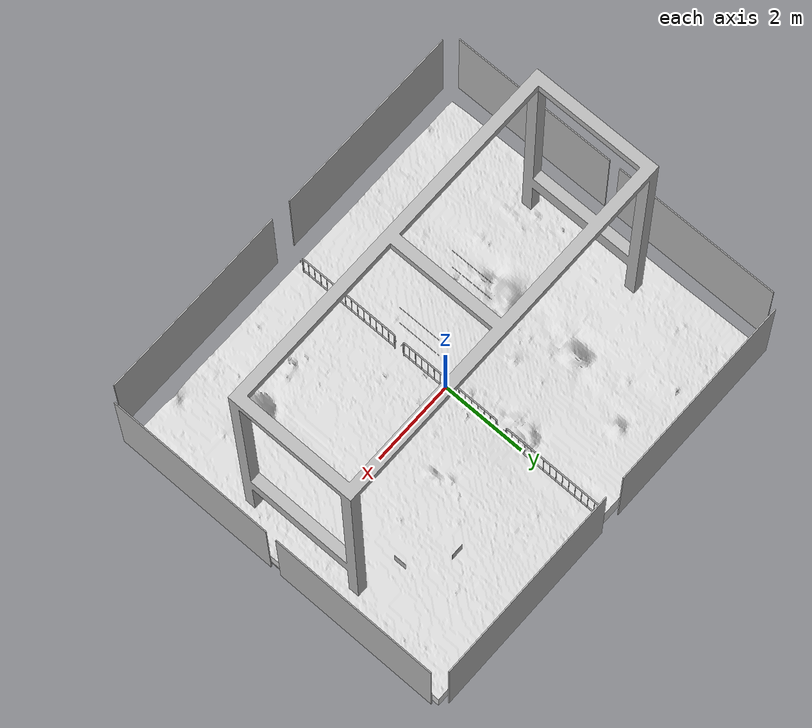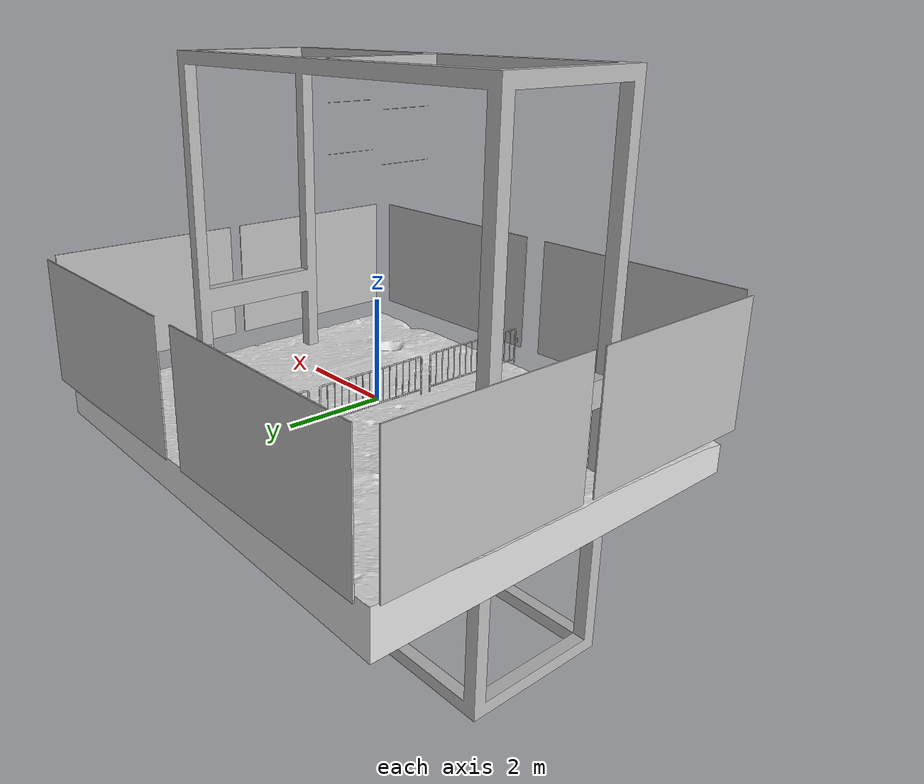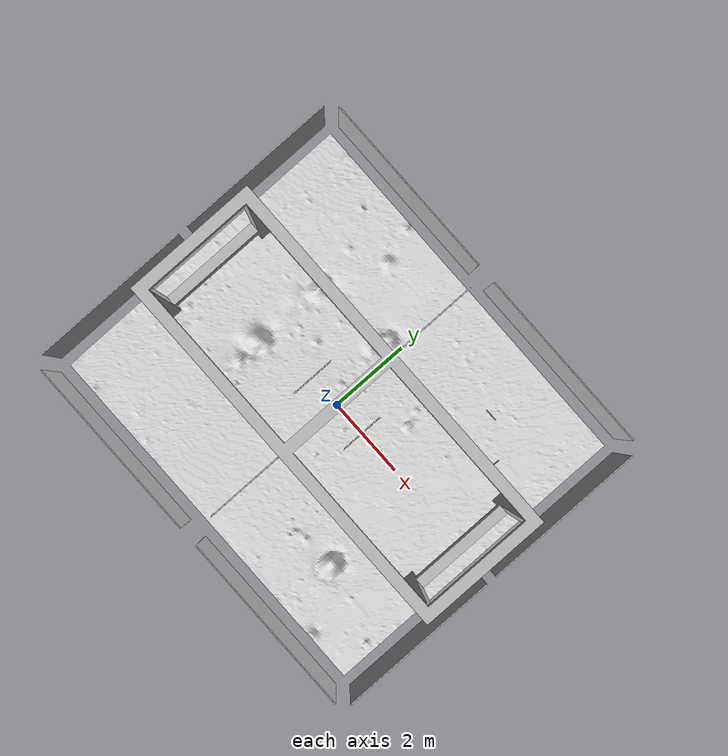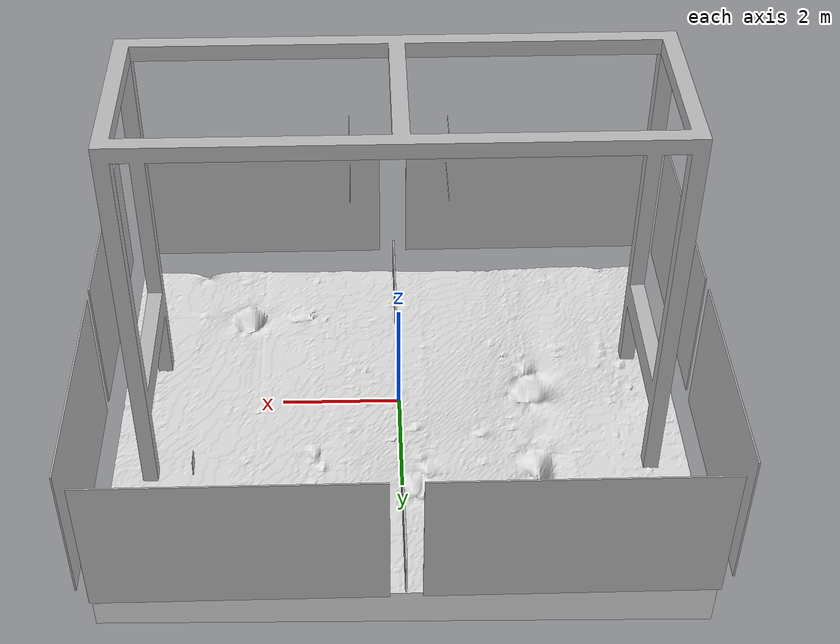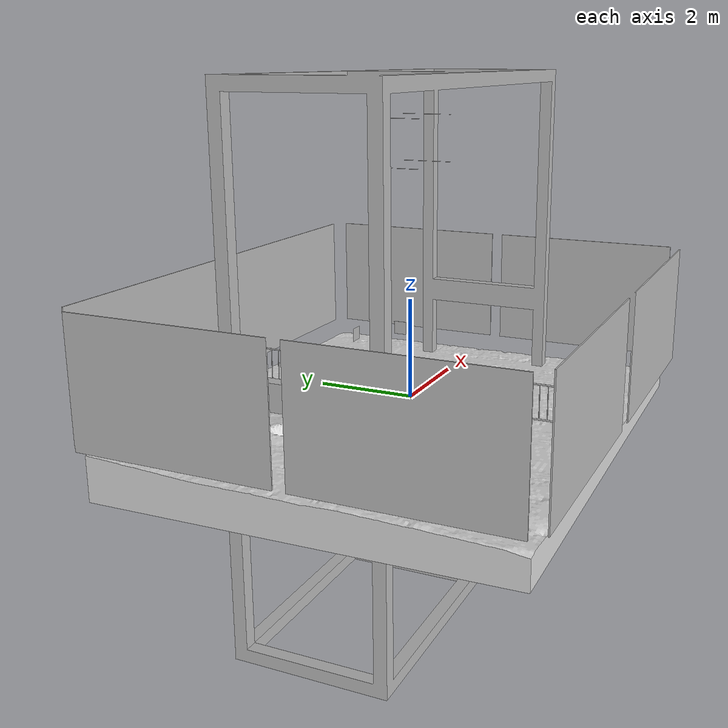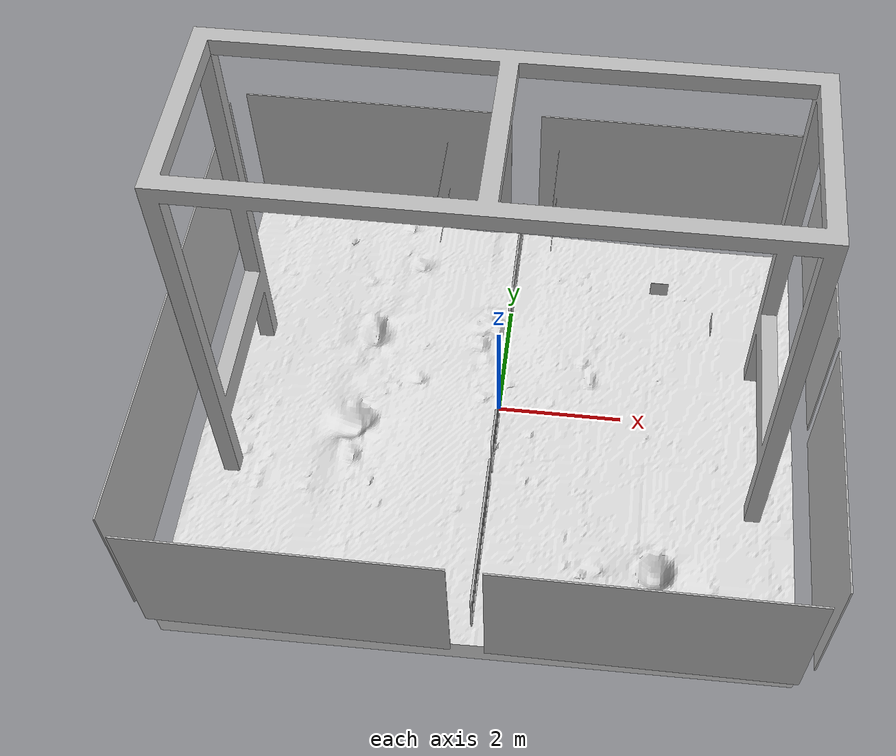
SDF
<sdf version="1.7">
 <world name="default">
  <light name="sun" type="directional">
   <pose>0 0 10 0 0 0</pose>
   <diffuse>0.4 0.4 0.4 1</diffuse>
   <specular>0.1 0.1 0.1 1</specular>
   <attenuation>
    <range>500</range>
    <constant>0.8</constant>
    <linear>0.02</linear>
    <quadratic>0.001</quadratic>
   </attenuation>
   <direction>-0.5 0.1 -0.9</direction>
  </light>
  <scene>
   <ambient>0.4 0.4 0.4 1</ambient>
   <background>18 18 18 255</background>
   <shadows>1</shadows>
   <grid>false</grid>
   <origin_visual>false</origin_visual>
  </scene>
  <physics type="ode">
   <max_step_size>0.001</max_step_size>
   <real_time_factor>1</real_time_factor>
   <real_time_update_rate>1000</real_time_update_rate>
  </physics>
  <gravity>0 0 -9.81</gravity>
  <model name="lunar_surface">
   <static>1</static>
   <link name="link">
    <visual name="lunar_surface">
     <pose>0 0 1.23 0 0 0</pose>
     <geometry><mesh><uri>model://lunar_surface/lunar_surface3.obj</uri><scale>1 1 1</scale></mesh></geometry>
    </visual>
    <collision name="lunar_surface_collision">
     <geometry><mesh><uri>model://lunar_surface/lunar_surface3.obj</uri><scale>1 1 1</scale></mesh></geometry>
     <surface><friction><ode><mu>0.4</mu><mu2>0.4</mu2></ode></friction></surface>
    </collision>
   </link>
  </model>
  <model name="arena_barriers">
   <pose>0 0 1.248 0 0 0</pose>
   <static>1</static>
   <link name="link">
    <visual name="arena_barriers">
     <geometry>
      <mesh><uri>model://ucf_arena/arena_barriers/arena_barriers.stl</uri><scale>1 1 1</scale></mesh>
     </geometry>
    </visual>
    <collision name="arena_barriers_collision">
     <geometry>
      <mesh><uri>model://ucf_arena/arena_barriers/arena_barriers.stl</uri><scale>1 1 1</scale></mesh>
     </geometry>
     <surface><friction><ode><mu>0.8</mu><mu2>0.8</mu2></ode></friction></surface>
    </collision>
   </link>
  </model>
  <model name="arena_rods">
   <pose>0 0 1.248 0 0 0</pose>
   <static>1</static>
   <link name="link">
    <visual name="arena_rods">
     <geometry><mesh><uri>model://ucf_arena/arena_rods/arena_rods.stl</uri><scale>1 1 1</scale></mesh></geometry>
    </visual>
    <collision name="arena_rods_collision">
     <geometry><mesh><uri>model://ucf_arena/arena_rods/arena_rods.stl</uri><scale>1 1 1</scale></mesh></geometry>
     <surface><friction><ode><mu>0.8</mu><mu2>0.8</mu2></ode></friction></surface>
    </collision>
   </link>
  </model>
  <model name="arena_walls">
   <pose>0 0 1.248 0 0 0</pose>
   <static>1</static>
   <link name="link">
    <visual name="arena_walls">
     <geometry><mesh><uri>model://ucf_arena/arena_walls/arena_walls.stl</uri><scale>1 1 1</scale></mesh></geometry>
    </visual>
    <collision name="arena_walls_collision">
     <geometry><mesh><uri>model://ucf_arena/arena_walls/arena_walls.stl</uri><scale>1 1 1</scale></mesh></geometry>
     <surface><friction><ode><mu>0.8</mu><mu2>0.8</mu2></ode></friction></surface>
    </collision>
   </link>
  </model>
  <model name="arena_windows">
   <pose>0 0 1.248 0 0 0</pose>
   <static>1</static>
   <link name="link">
    <visual name="arena_windows">
     <geometry>
      <mesh><uri>model://ucf_arena/arena_windows/arena_windows.stl</uri><scale>1 1 1</scale></mesh>
     </geometry>
    </visual>
    <collision name="arena_windows_collision">
     <geometry>
      <mesh><uri>model://ucf_arena/arena_windows/arena_windows.stl</uri><scale>1 1 1</scale></mesh>
     </geometry>
     <surface><friction><ode><mu>0.8</mu><mu2>0.8</mu2></ode></friction></surface>
    </collision>
   </link>
  </model>
  <model name="tag_36_11_00007">
   <pose>3.4 1.8 0.4 0 -1.58 0</pose>
   <static>1</static>
   <link name="link">
    <visual name="tag_36_11_00007">
     <geometry><box><size>0.3 0.3 0.005</size></box></geometry>
     <material>
      <script>
       <uri>model://apriltags/tag_36_11_00007/materials/scripts</uri>
       <uri>model://apriltags/tag_36_11_00007/materials/textures</uri>
       <name>tag_36_11_00007</name>
      </script>
     </material>
    </visual>
    <collision name="tag_36_11_00007_collision">
     <geometry><box><size>0.3 0.3 0.005</size></box></geometry>
    </collision>
   </link>
  </model>
  <model name="tag_36_11_00011">
   <pose>2.5 2.5 0.4 1.58 0 0</pose>
   <static>1</static>
   <link name="link">
    <visual name="tag_36_11_00011">
     <geometry><box><size>0.3 0.3 0.005</size></box></geometry>
     <material>
      <script>
       <uri>model://apriltags/tag_36_11_00011/materials/scripts</uri>
       <uri>model://apriltags/tag_36_11_00011/materials/textures</uri>
       <name>tag_36_11_00011</name>
      </script>
     </material>
    </visual>
    <collision name="tag_36_11_00011_collision">
     <geometry><box><size>0.3 0.3 0.005</size></box></geometry>
    </collision>
   </link>
  </model>
 </world>
</sdf>
